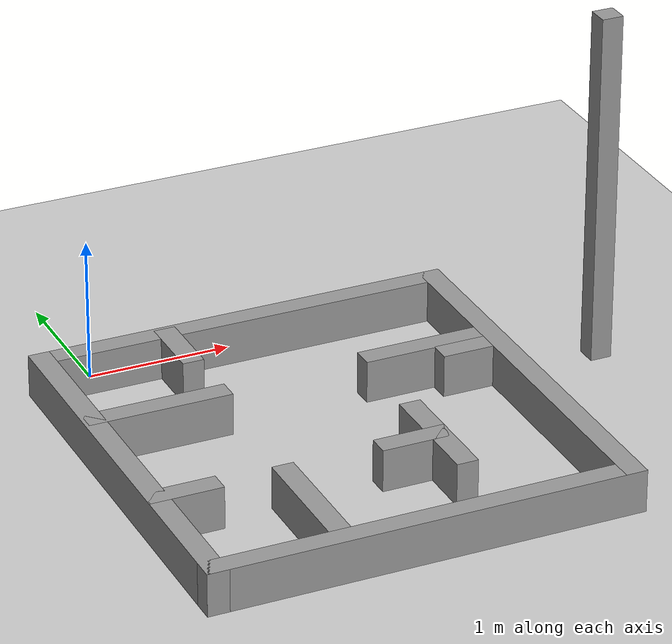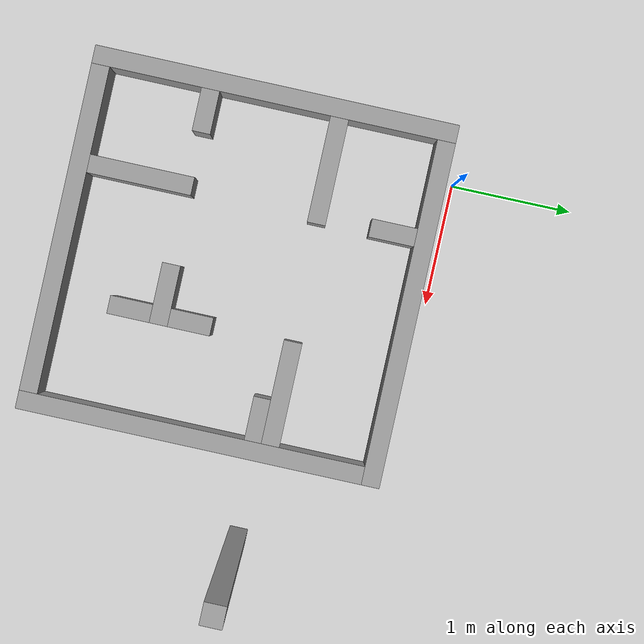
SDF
<sdf version="1.7">
 <world name="default">
  <light name="sun" type="directional">
   <pose>0 0 10 0 -0 0</pose>
   <diffuse>0.8 0.8 0.8 1</diffuse>
   <specular>0.2 0.2 0.2 1</specular>
   <attenuation>
    <range>1000</range>
    <constant>0.9</constant>
    <linear>0.01</linear>
    <quadratic>0.001</quadratic>
   </attenuation>
   <direction>-0.5 0.1 -0.9</direction>
   <spot><inner_angle>0</inner_angle><outer_angle>0</outer_angle><falloff>0</falloff></spot>
  </light>
  <model name="ground_plane">
   <static>1</static>
   <link name="link">
    <collision name="collision">
     <geometry><plane><normal>0 0 1</normal><size>100 100</size></plane></geometry>
     <surface><friction><ode><mu>100</mu><mu2>50</mu2></ode></friction></surface>
    </collision>
    <visual name="visual">
     <cast_shadows>0</cast_shadows>
     <geometry><plane><normal>0 0 1</normal><size>100 100</size></plane></geometry>
     <material>
      <script><uri>file://media/materials/scripts/gazebo.material</uri><name>Gazebo/Grey</name></script>
     </material>
    </visual>
   </link>
  </model>
  <gravity>0 0 -9.8</gravity>
  <magnetic_field>6e-06 2.3e-05 -4.2e-05</magnetic_field>
  <atmosphere type="adiabatic"/>
  <physics type="ode">
   <max_step_size>0.001</max_step_size>
   <real_time_factor>1</real_time_factor>
   <real_time_update_rate>1000</real_time_update_rate>
  </physics>
  <scene><ambient>0.4 0.4 0.4 1</ambient><background>0.7 0.7 0.7 1</background><shadows>1</shadows></scene>
  <audio><device>default</device></audio>
  <spherical_coordinates>
   <surface_model>EARTH_WGS84</surface_model>
   <latitude_deg>0</latitude_deg>
   <longitude_deg>0</longitude_deg>
   <elevation>0</elevation>
   <heading_deg>0</heading_deg>
  </spherical_coordinates>
  <model name="Labmap">
   <pose>1.41901 -1.539 0 0 -0 0</pose>
   <link name="Wall_0">
    <collision name="Wall_0_Collision">
     <geometry><box><size>3.006 0.15 0.3</size></box></geometry>
     <pose>0 0 0.15 0 -0 0</pose>
    </collision>
    <visual name="Wall_0_Visual">
     <pose>0 0 0.15 0 -0 0</pose>
     <geometry><box><size>3.006 0.15 0.3</size></box></geometry>
     <material>
      <script><uri>file://media/materials/scripts/gazebo.material</uri><name>Gazebo/Grey</name></script>
      <ambient>1 1 1 1</ambient>
     </material>
     <meta><layer>0</layer></meta>
    </visual>
    <pose>-1.80301 -0.036 0 0 -0 1.5708</pose>
   </link>
   <link name="Wall_1">
    <collision name="Wall_1_Collision">
     <geometry><box><size>3 0.15 0.3</size></box></geometry>
     <pose>0 0 0.15 0 -0 0</pose>
    </collision>
    <visual name="Wall_1_Visual">
     <pose>0 0 0.15 0 -0 0</pose>
     <geometry><box><size>3 0.15 0.3</size></box></geometry>
     <material>
      <script><uri>file://media/materials/scripts/gazebo.material</uri><name>Gazebo/Grey</name></script>
      <ambient>1 1 1 1</ambient>
     </material>
     <meta><layer>0</layer></meta>
    </visual>
    <pose>-0.378013 1.392 0 0 -0 0</pose>
   </link>
   <link name="Wall_10">
    <collision name="Wall_10_Collision">
     <geometry><box><size>0.5 0.15 0.3</size></box></geometry>
     <pose>0 0 0.15 0 -0 0</pose>
    </collision>
    <visual name="Wall_10_Visual">
     <pose>0 0 0.15 0 -0 0</pose>
     <geometry><box><size>0.5 0.15 0.3</size></box></geometry>
     <material>
      <script><uri>file://media/materials/scripts/gazebo.material</uri><name>Gazebo/Grey</name></script>
      <ambient>1 1 1 1</ambient>
     </material>
     <meta><layer>0</layer></meta>
    </visual>
    <pose>-1.62101 -0.556 0 0 -0 0</pose>
   </link>
   <link name="Wall_12">
    <collision name="Wall_12_Collision">
     <geometry><box><size>1 0.15 0.3</size></box></geometry>
     <pose>0 0 0.15 0 -0 0</pose>
    </collision>
    <visual name="Wall_12_Visual">
     <pose>0 0 0.15 0 -0 0</pose>
     <geometry><box><size>1 0.15 0.3</size></box></geometry>
     <material>
      <script><uri>file://media/materials/scripts/gazebo.material</uri><name>Gazebo/Grey</name></script>
      <ambient>1 1 1 1</ambient>
     </material>
     <meta><layer>0</layer></meta>
    </visual>
    <pose>-1.35301 0.509 0 0 -0 0</pose>
   </link>
   <link name="Wall_16">
    <collision name="Wall_16_Collision">
     <geometry><box><size>0.5 0.15 0.3</size></box></geometry>
     <pose>0 0 0.15 0 -0 0</pose>
    </collision>
    <visual name="Wall_16_Visual">
     <pose>0 0 0.15 0 -0 0</pose>
     <geometry><box><size>0.5 0.15 0.3</size></box></geometry>
     <material>
      <script><uri>file://media/materials/scripts/gazebo.material</uri><name>Gazebo/Grey</name></script>
      <ambient>1 1 1 1</ambient>
     </material>
     <meta><layer>0</layer></meta>
    </visual>
    <pose>-0.917013 1.192 0 0 -0 -1.5708</pose>
   </link>
   <link name="Wall_2">
    <collision name="Wall_2_Collision">
     <geometry><box><size>3.006 0.15 0.3</size></box></geometry>
     <pose>0 0 0.15 0 -0 0</pose>
    </collision>
    <visual name="Wall_2_Visual">
     <pose>0 0 0.15 0 -0 0</pose>
     <geometry><box><size>3.006 0.15 0.3</size></box></geometry>
     <material>
      <script><uri>file://media/materials/scripts/gazebo.material</uri><name>Gazebo/Grey</name></script>
      <ambient>1 1 1 1</ambient>
     </material>
     <meta><layer>0</layer></meta>
    </visual>
    <pose>1.04699 -0.036 0 0 -0 -1.5708</pose>
   </link>
   <link name="Wall_3">
    <collision name="Wall_3_Collision">
     <geometry><box><size>3 0.15 0.3</size></box></geometry>
     <pose>0 0 0.15 0 -0 0</pose>
    </collision>
    <visual name="Wall_3_Visual">
     <pose>0 0 0.15 0 -0 0</pose>
     <geometry><box><size>3 0.15 0.3</size></box></geometry>
     <material>
      <script><uri>file://media/materials/scripts/gazebo.material</uri><name>Gazebo/Grey</name></script>
      <ambient>1 1 1 1</ambient>
     </material>
     <meta><layer>0</layer></meta>
    </visual>
    <pose>-0.378013 -1.464 0 0 -0 3.14159</pose>
   </link>
   <link name="Wall_35">
    <collision name="Wall_35_Collision">
     <geometry><box><size>1 0.15 0.3</size></box></geometry>
     <pose>0 0 0.15 0 -0 0</pose>
    </collision>
    <visual name="Wall_35_Visual">
     <pose>0 0 0.15 0 -0 0</pose>
     <geometry><box><size>1 0.15 0.3</size></box></geometry>
     <material>
      <script><uri>file://media/materials/scripts/gazebo.material</uri><name>Gazebo/Grey</name></script>
      <ambient>1 1 1 1</ambient>
     </material>
     <meta><layer>0</layer></meta>
    </visual>
    <pose>0.615301 0.533482 0 0 -0 3.14159</pose>
   </link>
   <link name="Wall_37">
    <collision name="Wall_37_Collision">
     <geometry><box><size>0.5 0.15 0.3</size></box></geometry>
     <pose>0 0 0.15 0 -0 0</pose>
    </collision>
    <visual name="Wall_37_Visual">
     <pose>0 0 0.15 0 -0 0</pose>
     <geometry><box><size>0.5 0.15 0.3</size></box></geometry>
     <material>
      <script><uri>file://media/materials/scripts/gazebo.material</uri><name>Gazebo/Grey</name></script>
      <ambient>1 1 1 1</ambient>
     </material>
     <meta><layer>0</layer></meta>
    </visual>
    <pose>-0.034013 -0.559 0 0 -0 0</pose>
   </link>
   <link name="Wall_38">
    <collision name="Wall_38_Collision">
     <geometry><box><size>0.5 0.15 0.3</size></box></geometry>
     <pose>0 0 0.15 0 -0 0</pose>
    </collision>
    <visual name="Wall_38_Visual">
     <pose>0 0 0.15 0 -0 0</pose>
     <geometry><box><size>0.5 0.15 0.3</size></box></geometry>
     <material>
      <script><uri>file://media/materials/scripts/gazebo.material</uri><name>Gazebo/Grey</name></script>
      <ambient>1 1 1 1</ambient>
     </material>
     <meta><layer>0</layer></meta>
    </visual>
    <pose>0.140987 -0.384 0 0 -0 1.5708</pose>
   </link>
   <link name="Wall_41">
    <collision name="Wall_41_Collision">
     <geometry><box><size>0.5 0.15 0.3</size></box></geometry>
     <pose>0 0 0.15 0 -0 0</pose>
    </collision>
    <visual name="Wall_41_Visual">
     <pose>0 0 0.15 0 -0 0</pose>
     <geometry><box><size>0.5 0.15 0.3</size></box></geometry>
     <material>
      <script><uri>file://media/materials/scripts/gazebo.material</uri><name>Gazebo/Grey</name></script>
      <ambient>1 1 1 1</ambient>
     </material>
     <meta><layer>0</layer></meta>
    </visual>
    <pose>0.140987 -0.734 0 0 -0 -1.5708</pose>
   </link>
   <link name="Wall_43">
    <collision name="Wall_43_Collision">
     <geometry><box><size>0.15 0.15 2.5</size></box></geometry>
     <pose>0 0 1.25 0 -0 0</pose>
    </collision>
    <visual name="Wall_43_Visual">
     <pose>0 0 1.25 0 -0 0</pose>
     <geometry><box><size>0.15 0.15 2.5</size></box></geometry>
     <material>
      <script><uri>file://media/materials/scripts/gazebo.material</uri><name>Gazebo/Grey</name></script>
      <ambient>1 1 1 1</ambient>
     </material>
     <meta><layer>0</layer></meta>
    </visual>
    <pose>1.80301 0.426797 0 0 -0 0</pose>
   </link>
   <link name="Wall_53">
    <collision name="Wall_53_Collision">
     <geometry><box><size>0.5 0.15 0.3</size></box></geometry>
     <pose>0 0 0.15 0 -0 0</pose>
    </collision>
    <visual name="Wall_53_Visual">
     <pose>0 0 0.15 0 -0 0</pose>
     <geometry><box><size>0.5 0.15 0.3</size></box></geometry>
     <material>
      <script><uri>file://media/materials/scripts/gazebo.material</uri><name>Gazebo/Grey</name></script>
      <ambient>1 1 1 1</ambient>
     </material>
     <meta><layer>0</layer></meta>
    </visual>
    <pose>0.860987 0.393651 0 0 -0 0</pose>
   </link>
   <link name="Wall_6">
    <collision name="Wall_6_Collision">
     <geometry><box><size>1 0.15 0.3</size></box></geometry>
     <pose>0 0 0.15 0 -0 0</pose>
    </collision>
    <visual name="Wall_6_Visual">
     <pose>0 0 0.15 0 -0 0</pose>
     <geometry><box><size>1 0.15 0.3</size></box></geometry>
     <material>
      <script><uri>file://media/materials/scripts/gazebo.material</uri><name>Gazebo/Grey</name></script>
      <ambient>1 1 1 1</ambient>
     </material>
     <meta><layer>0</layer></meta>
    </visual>
    <pose>-0.932013 -1.028 0 0 -0 1.5708</pose>
   </link>
   <static>1</static>
  </model>
 </world>
</sdf>
